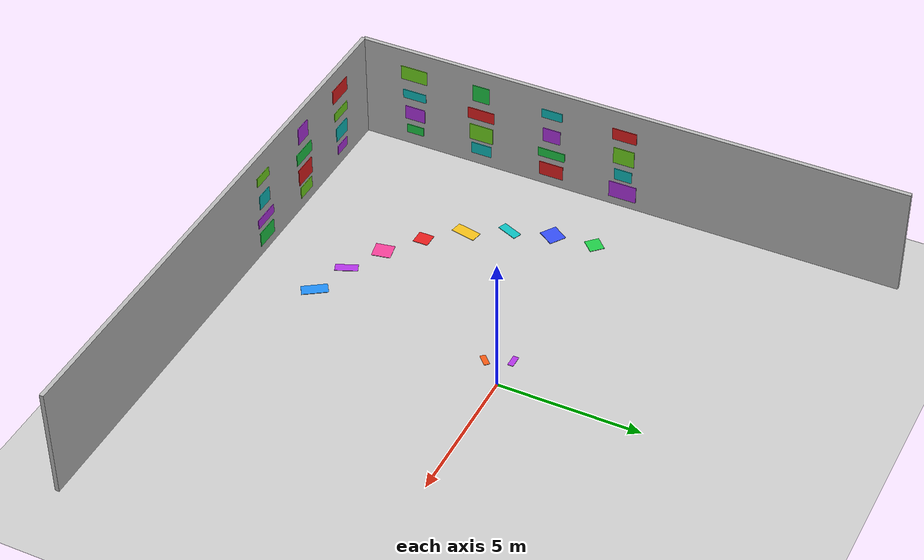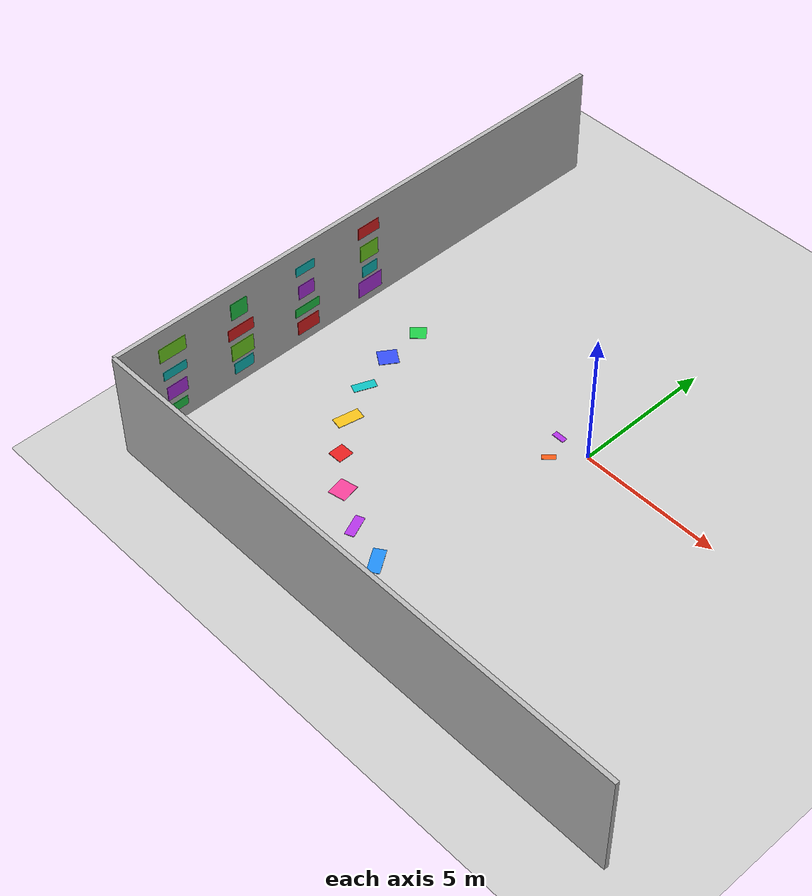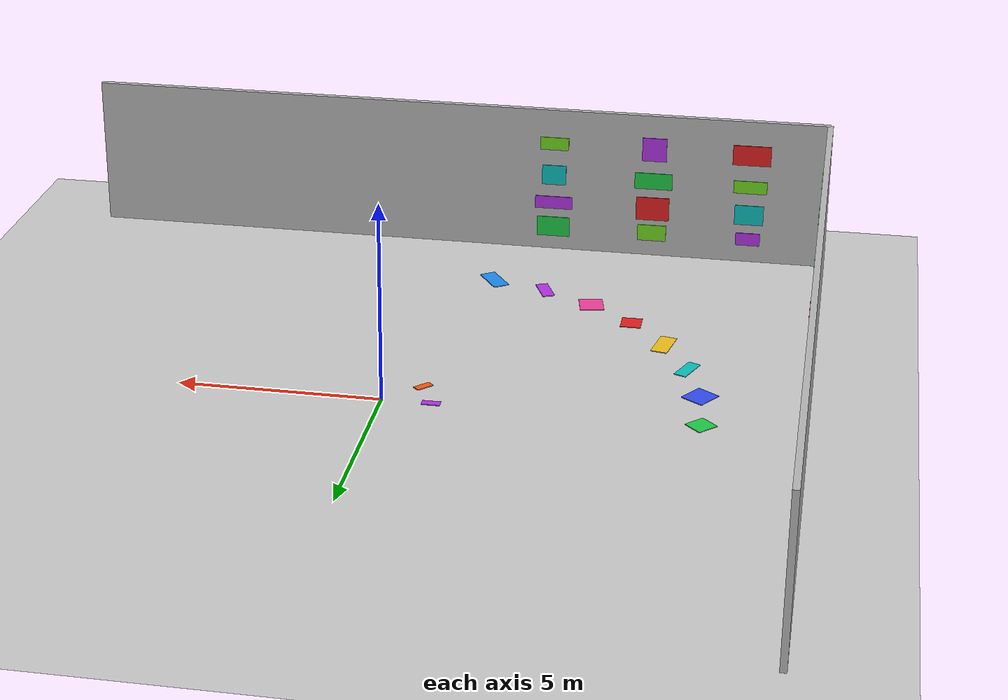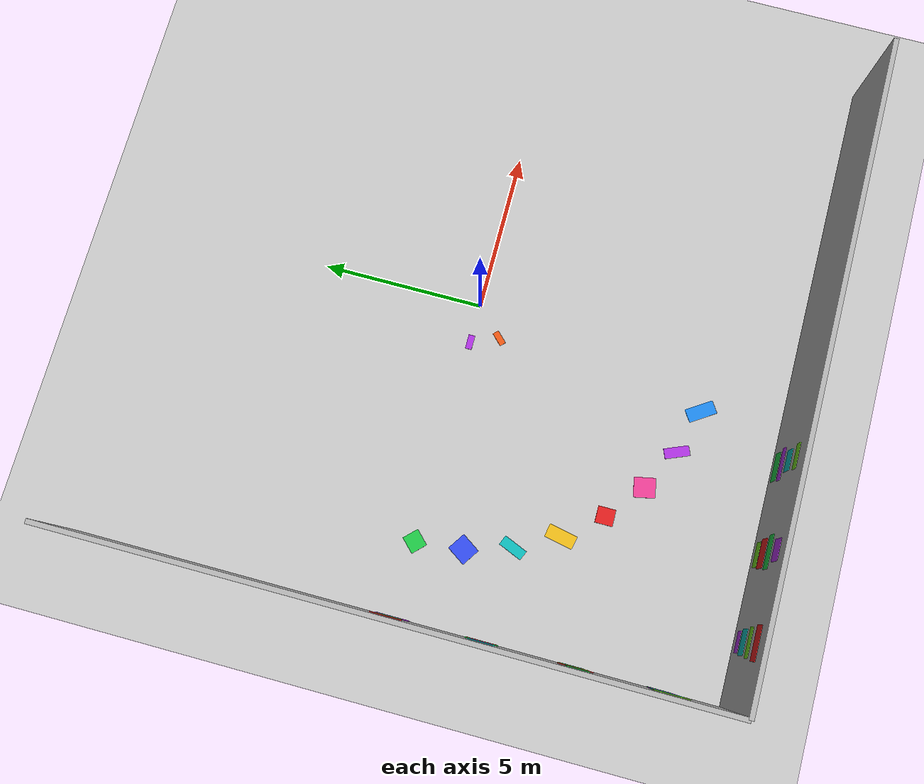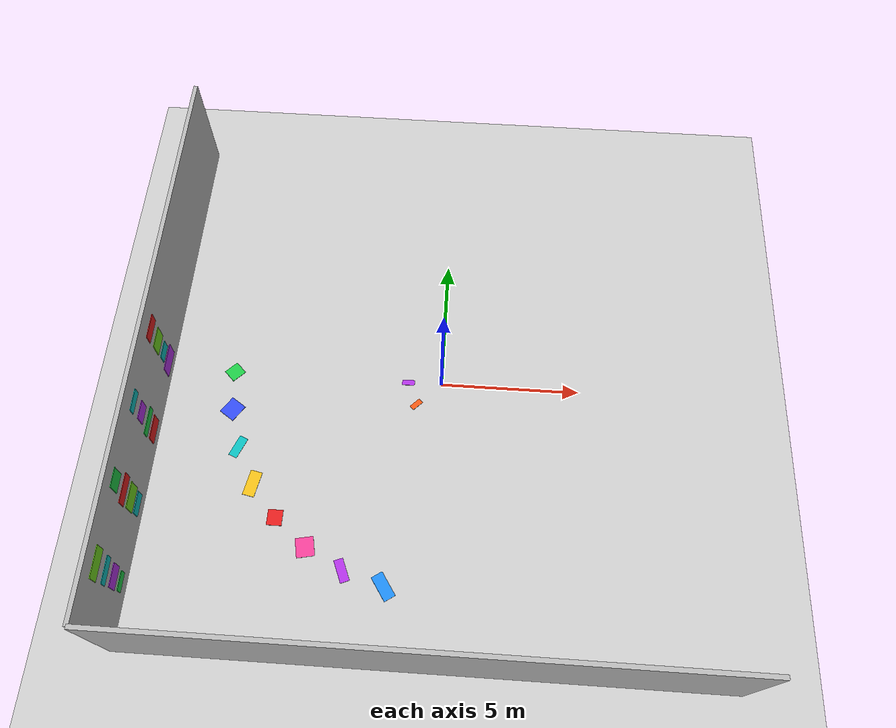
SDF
<sdf version="1.9">
 <world name="vio_marker_arena">
  <model name="ground_plane">
   <static>true</static>
   <link name="link">
    <collision name="collision">
     <geometry><plane><normal>0 0 1</normal><size>1 1</size></plane></geometry>
    </collision>
    <visual name="visual">
     <geometry><plane><normal>0 0 1</normal><size>500 500</size></plane></geometry>
     <material>
      <ambient>0.8 0.8 0.8 1</ambient>
      <diffuse>0.8 0.8 0.8 1</diffuse>
      <specular>0.8 0.8 0.8 1</specular>
     </material>
    </visual>
    <inertial>
     <mass>1</mass>
     <inertia><ixx>1</ixx><ixy>0</ixy><ixz>0</ixz><iyy>1</iyy><iyz>0</iyz><izz>1</izz></inertia>
    </inertial>
   </link>
  </model>
  <model name="vio_wall_south">
   <static>true</static>
   <pose>0.0000 -10.0000 2.0000 0.0000 0.0000 0.0000</pose>
   <link name="link">
    <collision name="collision"><geometry><box><size>20.0000 0.1500 4.0000</size></box></geometry></collision>
    <visual name="visual">
     <geometry><box><size>20.0000 0.1500 4.0000</size></box></geometry>
     <material>
      <ambient>0.720 0.720 0.720 1.000</ambient>
      <diffuse>0.720 0.720 0.720 1.000</diffuse>
      <specular>0.10 0.10 0.10 1</specular>
      <emissive>0 0 0 1</emissive>
     </material>
    </visual>
   </link>
  </model>
  <model name="vio_wall_west">
   <static>true</static>
   <pose>-10.0000 0.0000 2.0000 0.0000 0.0000 0.0000</pose>
   <link name="link">
    <collision name="collision"><geometry><box><size>0.1500 20.0000 4.0000</size></box></geometry></collision>
    <visual name="visual">
     <geometry><box><size>0.1500 20.0000 4.0000</size></box></geometry>
     <material>
      <ambient>0.720 0.720 0.720 1.000</ambient>
      <diffuse>0.720 0.720 0.720 1.000</diffuse>
      <specular>0.10 0.10 0.10 1</specular>
      <emissive>0 0 0 1</emissive>
     </material>
    </visual>
   </link>
  </model>
  <model name="vio_panel_south_0_0">
   <static>true</static>
   <pose>-8.0000 -9.9190 0.6500 0.0000 0.0000 0.0000</pose>
   <link name="link">
    <visual name="visual">
     <geometry><box><size>0.6500 0.0350 0.3500</size></box></geometry>
     <material>
      <ambient>0.700 0.200 0.900 1.000</ambient>
      <diffuse>0.700 0.200 0.900 1.000</diffuse>
      <specular>0.10 0.10 0.10 1</specular>
      <emissive>0 0 0 1</emissive>
     </material>
    </visual>
   </link>
  </model>
  <model name="vio_panel_south_0_1">
   <static>true</static>
   <pose>-5.4000 -9.9190 0.6500 0.0000 0.0000 0.0000</pose>
   <link name="link">
    <visual name="visual">
     <geometry><box><size>0.7700 0.0350 0.4500</size></box></geometry>
     <material>
      <ambient>0.450 0.850 0.120 1.000</ambient>
      <diffuse>0.450 0.850 0.120 1.000</diffuse>
      <specular>0.10 0.10 0.10 1</specular>
      <emissive>0 0 0 1</emissive>
     </material>
    </visual>
   </link>
  </model>
  <model name="vio_panel_south_0_2">
   <static>true</static>
   <pose>-2.7000 -9.9190 0.6500 0.0000 0.0000 0.0000</pose>
   <link name="link">
    <visual name="visual">
     <geometry><box><size>0.8900 0.0350 0.5500</size></box></geometry>
     <material>
      <ambient>0.120 0.800 0.280 1.000</ambient>
      <diffuse>0.120 0.800 0.280 1.000</diffuse>
      <specular>0.10 0.10 0.10 1</specular>
      <emissive>0 0 0 1</emissive>
     </material>
    </visual>
   </link>
  </model>
  <model name="vio_panel_south_1_0">
   <static>true</static>
   <pose>-8.0000 -9.9190 1.3500 0.0000 0.0000 0.0000</pose>
   <link name="link">
    <visual name="visual">
     <geometry><box><size>0.7700 0.0350 0.5500</size></box></geometry>
     <material>
      <ambient>0.050 0.750 0.750 1.000</ambient>
      <diffuse>0.050 0.750 0.750 1.000</diffuse>
      <specular>0.10 0.10 0.10 1</specular>
      <emissive>0 0 0 1</emissive>
     </material>
    </visual>
   </link>
  </model>
  <model name="vio_panel_south_1_1">
   <static>true</static>
   <pose>-5.4000 -9.9190 1.3500 0.0000 0.0000 0.0000</pose>
   <link name="link">
    <visual name="visual">
     <geometry><box><size>0.8900 0.0350 0.6500</size></box></geometry>
     <material>
      <ambient>0.900 0.120 0.120 1.000</ambient>
      <diffuse>0.900 0.120 0.120 1.000</diffuse>
      <specular>0.10 0.10 0.10 1</specular>
      <emissive>0 0 0 1</emissive>
     </material>
    </visual>
   </link>
  </model>
  <model name="vio_panel_south_1_2">
   <static>true</static>
   <pose>-2.7000 -9.9190 1.3500 0.0000 0.0000 0.0000</pose>
   <link name="link">
    <visual name="visual">
     <geometry><box><size>1.0100 0.0350 0.3500</size></box></geometry>
     <material>
      <ambient>0.700 0.200 0.900 1.000</ambient>
      <diffuse>0.700 0.200 0.900 1.000</diffuse>
      <specular>0.10 0.10 0.10 1</specular>
      <emissive>0 0 0 1</emissive>
     </material>
    </visual>
   </link>
  </model>
  <model name="vio_panel_south_2_0">
   <static>true</static>
   <pose>-8.0000 -9.9190 2.1500 0.0000 0.0000 0.0000</pose>
   <link name="link">
    <visual name="visual">
     <geometry><box><size>0.8900 0.0350 0.3500</size></box></geometry>
     <material>
      <ambient>0.450 0.850 0.120 1.000</ambient>
      <diffuse>0.450 0.850 0.120 1.000</diffuse>
      <specular>0.10 0.10 0.10 1</specular>
      <emissive>0 0 0 1</emissive>
     </material>
    </visual>
   </link>
  </model>
  <model name="vio_panel_south_2_1">
   <static>true</static>
   <pose>-5.4000 -9.9190 2.1500 0.0000 0.0000 0.0000</pose>
   <link name="link">
    <visual name="visual">
     <geometry><box><size>1.0100 0.0350 0.4500</size></box></geometry>
     <material>
      <ambient>0.120 0.800 0.280 1.000</ambient>
      <diffuse>0.120 0.800 0.280 1.000</diffuse>
      <specular>0.10 0.10 0.10 1</specular>
      <emissive>0 0 0 1</emissive>
     </material>
    </visual>
   </link>
  </model>
  <model name="vio_panel_south_2_2">
   <static>true</static>
   <pose>-2.7000 -9.9190 2.1500 0.0000 0.0000 0.0000</pose>
   <link name="link">
    <visual name="visual">
     <geometry><box><size>0.6500 0.0350 0.5500</size></box></geometry>
     <material>
      <ambient>0.050 0.750 0.750 1.000</ambient>
      <diffuse>0.050 0.750 0.750 1.000</diffuse>
      <specular>0.10 0.10 0.10 1</specular>
      <emissive>0 0 0 1</emissive>
     </material>
    </visual>
   </link>
  </model>
  <model name="vio_panel_south_3_0">
   <static>true</static>
   <pose>-8.0000 -9.9190 3.0500 0.0000 0.0000 0.0000</pose>
   <link name="link">
    <visual name="visual">
     <geometry><box><size>1.0100 0.0350 0.5500</size></box></geometry>
     <material>
      <ambient>0.900 0.120 0.120 1.000</ambient>
      <diffuse>0.900 0.120 0.120 1.000</diffuse>
      <specular>0.10 0.10 0.10 1</specular>
      <emissive>0 0 0 1</emissive>
     </material>
    </visual>
   </link>
  </model>
  <model name="vio_panel_south_3_1">
   <static>true</static>
   <pose>-5.4000 -9.9190 3.0500 0.0000 0.0000 0.0000</pose>
   <link name="link">
    <visual name="visual">
     <geometry><box><size>0.6500 0.0350 0.6500</size></box></geometry>
     <material>
      <ambient>0.700 0.200 0.900 1.000</ambient>
      <diffuse>0.700 0.200 0.900 1.000</diffuse>
      <specular>0.10 0.10 0.10 1</specular>
      <emissive>0 0 0 1</emissive>
     </material>
    </visual>
   </link>
  </model>
  <model name="vio_panel_south_3_2">
   <static>true</static>
   <pose>-2.7000 -9.9190 3.0500 0.0000 0.0000 0.0000</pose>
   <link name="link">
    <visual name="visual">
     <geometry><box><size>0.7700 0.0350 0.3500</size></box></geometry>
     <material>
      <ambient>0.450 0.850 0.120 1.000</ambient>
      <diffuse>0.450 0.850 0.120 1.000</diffuse>
      <specular>0.10 0.10 0.10 1</specular>
      <emissive>0 0 0 1</emissive>
     </material>
    </visual>
   </link>
  </model>
  <model name="vio_panel_west_0_0">
   <static>true</static>
   <pose>-9.9190 -8.0000 0.6500 0.0000 0.0000 0.0000</pose>
   <link name="link">
    <visual name="visual">
     <geometry><box><size>0.0350 0.6500 0.3500</size></box></geometry>
     <material>
      <ambient>0.120 0.800 0.280 1.000</ambient>
      <diffuse>0.120 0.800 0.280 1.000</diffuse>
      <specular>0.10 0.10 0.10 1</specular>
      <emissive>0 0 0 1</emissive>
     </material>
    </visual>
   </link>
  </model>
  <model name="vio_panel_west_0_1">
   <static>true</static>
   <pose>-9.9190 -5.4000 0.6500 0.0000 0.0000 0.0000</pose>
   <link name="link">
    <visual name="visual">
     <geometry><box><size>0.0350 0.7700 0.4500</size></box></geometry>
     <material>
      <ambient>0.050 0.750 0.750 1.000</ambient>
      <diffuse>0.050 0.750 0.750 1.000</diffuse>
      <specular>0.10 0.10 0.10 1</specular>
      <emissive>0 0 0 1</emissive>
     </material>
    </visual>
   </link>
  </model>
  <model name="vio_panel_west_0_2">
   <static>true</static>
   <pose>-9.9190 -2.7000 0.6500 0.0000 0.0000 0.0000</pose>
   <link name="link">
    <visual name="visual">
     <geometry><box><size>0.0350 0.8900 0.5500</size></box></geometry>
     <material>
      <ambient>0.900 0.120 0.120 1.000</ambient>
      <diffuse>0.900 0.120 0.120 1.000</diffuse>
      <specular>0.10 0.10 0.10 1</specular>
      <emissive>0 0 0 1</emissive>
     </material>
    </visual>
   </link>
  </model>
  <model name="vio_panel_west_0_3">
   <static>true</static>
   <pose>-9.9190 0.0000 0.6500 0.0000 0.0000 0.0000</pose>
   <link name="link">
    <visual name="visual">
     <geometry><box><size>0.0350 1.0100 0.6500</size></box></geometry>
     <material>
      <ambient>0.700 0.200 0.900 1.000</ambient>
      <diffuse>0.700 0.200 0.900 1.000</diffuse>
      <specular>0.10 0.10 0.10 1</specular>
      <emissive>0 0 0 1</emissive>
     </material>
    </visual>
   </link>
  </model>
  <model name="vio_panel_west_1_0">
   <static>true</static>
   <pose>-9.9190 -8.0000 1.3500 0.0000 0.0000 0.0000</pose>
   <link name="link">
    <visual name="visual">
     <geometry><box><size>0.0350 0.7700 0.5500</size></box></geometry>
     <material>
      <ambient>0.700 0.200 0.900 1.000</ambient>
      <diffuse>0.700 0.200 0.900 1.000</diffuse>
      <specular>0.10 0.10 0.10 1</specular>
      <emissive>0 0 0 1</emissive>
     </material>
    </visual>
   </link>
  </model>
  <model name="vio_panel_west_1_1">
   <static>true</static>
   <pose>-9.9190 -5.4000 1.3500 0.0000 0.0000 0.0000</pose>
   <link name="link">
    <visual name="visual">
     <geometry><box><size>0.0350 0.8900 0.6500</size></box></geometry>
     <material>
      <ambient>0.450 0.850 0.120 1.000</ambient>
      <diffuse>0.450 0.850 0.120 1.000</diffuse>
      <specular>0.10 0.10 0.10 1</specular>
      <emissive>0 0 0 1</emissive>
     </material>
    </visual>
   </link>
  </model>
  <model name="vio_panel_west_1_2">
   <static>true</static>
   <pose>-9.9190 -2.7000 1.3500 0.0000 0.0000 0.0000</pose>
   <link name="link">
    <visual name="visual">
     <geometry><box><size>0.0350 1.0100 0.3500</size></box></geometry>
     <material>
      <ambient>0.120 0.800 0.280 1.000</ambient>
      <diffuse>0.120 0.800 0.280 1.000</diffuse>
      <specular>0.10 0.10 0.10 1</specular>
      <emissive>0 0 0 1</emissive>
     </material>
    </visual>
   </link>
  </model>
  <model name="vio_panel_west_1_3">
   <static>true</static>
   <pose>-9.9190 0.0000 1.3500 0.0000 0.0000 0.0000</pose>
   <link name="link">
    <visual name="visual">
     <geometry><box><size>0.0350 0.6500 0.4500</size></box></geometry>
     <material>
      <ambient>0.050 0.750 0.750 1.000</ambient>
      <diffuse>0.050 0.750 0.750 1.000</diffuse>
      <specular>0.10 0.10 0.10 1</specular>
      <emissive>0 0 0 1</emissive>
     </material>
    </visual>
   </link>
  </model>
  <model name="vio_panel_west_2_0">
   <static>true</static>
   <pose>-9.9190 -8.0000 2.1500 0.0000 0.0000 0.0000</pose>
   <link name="link">
    <visual name="visual">
     <geometry><box><size>0.0350 0.8900 0.3500</size></box></geometry>
     <material>
      <ambient>0.050 0.750 0.750 1.000</ambient>
      <diffuse>0.050 0.750 0.750 1.000</diffuse>
      <specular>0.10 0.10 0.10 1</specular>
      <emissive>0 0 0 1</emissive>
     </material>
    </visual>
   </link>
  </model>
  <model name="vio_panel_west_2_1">
   <static>true</static>
   <pose>-9.9190 -5.4000 2.1500 0.0000 0.0000 0.0000</pose>
   <link name="link">
    <visual name="visual">
     <geometry><box><size>0.0350 1.0100 0.4500</size></box></geometry>
     <material>
      <ambient>0.900 0.120 0.120 1.000</ambient>
      <diffuse>0.900 0.120 0.120 1.000</diffuse>
      <specular>0.10 0.10 0.10 1</specular>
      <emissive>0 0 0 1</emissive>
     </material>
    </visual>
   </link>
  </model>
  <model name="vio_panel_west_2_2">
   <static>true</static>
   <pose>-9.9190 -2.7000 2.1500 0.0000 0.0000 0.0000</pose>
   <link name="link">
    <visual name="visual">
     <geometry><box><size>0.0350 0.6500 0.5500</size></box></geometry>
     <material>
      <ambient>0.700 0.200 0.900 1.000</ambient>
      <diffuse>0.700 0.200 0.900 1.000</diffuse>
      <specular>0.10 0.10 0.10 1</specular>
      <emissive>0 0 0 1</emissive>
     </material>
    </visual>
   </link>
  </model>
  <model name="vio_panel_west_2_3">
   <static>true</static>
   <pose>-9.9190 0.0000 2.1500 0.0000 0.0000 0.0000</pose>
   <link name="link">
    <visual name="visual">
     <geometry><box><size>0.0350 0.7700 0.6500</size></box></geometry>
     <material>
      <ambient>0.450 0.850 0.120 1.000</ambient>
      <diffuse>0.450 0.850 0.120 1.000</diffuse>
      <specular>0.10 0.10 0.10 1</specular>
      <emissive>0 0 0 1</emissive>
     </material>
    </visual>
   </link>
  </model>
  <model name="vio_panel_west_3_0">
   <static>true</static>
   <pose>-9.9190 -8.0000 3.0500 0.0000 0.0000 0.0000</pose>
   <link name="link">
    <visual name="visual">
     <geometry><box><size>0.0350 1.0100 0.5500</size></box></geometry>
     <material>
      <ambient>0.450 0.850 0.120 1.000</ambient>
      <diffuse>0.450 0.850 0.120 1.000</diffuse>
      <specular>0.10 0.10 0.10 1</specular>
      <emissive>0 0 0 1</emissive>
     </material>
    </visual>
   </link>
  </model>
  <model name="vio_panel_west_3_1">
   <static>true</static>
   <pose>-9.9190 -5.4000 3.0500 0.0000 0.0000 0.0000</pose>
   <link name="link">
    <visual name="visual">
     <geometry><box><size>0.0350 0.6500 0.6500</size></box></geometry>
     <material>
      <ambient>0.120 0.800 0.280 1.000</ambient>
      <diffuse>0.120 0.800 0.280 1.000</diffuse>
      <specular>0.10 0.10 0.10 1</specular>
      <emissive>0 0 0 1</emissive>
     </material>
    </visual>
   </link>
  </model>
  <model name="vio_panel_west_3_2">
   <static>true</static>
   <pose>-9.9190 -2.7000 3.0500 0.0000 0.0000 0.0000</pose>
   <link name="link">
    <visual name="visual">
     <geometry><box><size>0.0350 0.7700 0.3500</size></box></geometry>
     <material>
      <ambient>0.050 0.750 0.750 1.000</ambient>
      <diffuse>0.050 0.750 0.750 1.000</diffuse>
      <specular>0.10 0.10 0.10 1</specular>
      <emissive>0 0 0 1</emissive>
     </material>
    </visual>
   </link>
  </model>
  <model name="vio_panel_west_3_3">
   <static>true</static>
   <pose>-9.9190 0.0000 3.0500 0.0000 0.0000 0.0000</pose>
   <link name="link">
    <visual name="visual">
     <geometry><box><size>0.0350 0.8900 0.4500</size></box></geometry>
     <material>
      <ambient>0.900 0.120 0.120 1.000</ambient>
      <diffuse>0.900 0.120 0.120 1.000</diffuse>
      <specular>0.10 0.10 0.10 1</specular>
      <emissive>0 0 0 1</emissive>
     </material>
    </visual>
   </link>
  </model>
  <model name="vio_floor_marker_16">
   <static>true</static>
   <pose>-7.6000 0.0000 0.0120 0.0000 0.0000 3.9270</pose>
   <link name="link">
    <visual name="visual">
     <geometry><box><size>0.5500 0.5200 0.0180</size></box></geometry>
     <material>
      <ambient>0.120 0.800 0.280 1.000</ambient>
      <diffuse>0.120 0.800 0.280 1.000</diffuse>
      <specular>0.10 0.10 0.10 1</specular>
      <emissive>0 0 0 1</emissive>
     </material>
    </visual>
   </link>
  </model>
  <model name="vio_floor_marker_17">
   <static>true</static>
   <pose>-7.4540 -1.4827 0.0120 0.0000 0.0000 4.1233</pose>
   <link name="link">
    <visual name="visual">
     <geometry><box><size>0.6700 0.6200 0.0180</size></box></geometry>
     <material>
      <ambient>0.200 0.300 0.950 1.000</ambient>
      <diffuse>0.200 0.300 0.950 1.000</diffuse>
      <specular>0.10 0.10 0.10 1</specular>
      <emissive>0 0 0 1</emissive>
     </material>
    </visual>
   </link>
  </model>
  <model name="vio_floor_marker_18">
   <static>true</static>
   <pose>-7.0215 -2.9084 0.0120 0.0000 0.0000 4.3197</pose>
   <link name="link">
    <visual name="visual">
     <geometry><box><size>0.7900 0.3200 0.0180</size></box></geometry>
     <material>
      <ambient>0.050 0.750 0.750 1.000</ambient>
      <diffuse>0.050 0.750 0.750 1.000</diffuse>
      <specular>0.10 0.10 0.10 1</specular>
      <emissive>0 0 0 1</emissive>
     </material>
    </visual>
   </link>
  </model>
  <model name="vio_floor_marker_19">
   <static>true</static>
   <pose>-6.3192 -4.2223 0.0120 0.0000 0.0000 4.5160</pose>
   <link name="link">
    <visual name="visual">
     <geometry><box><size>0.9100 0.4200 0.0180</size></box></geometry>
     <material>
      <ambient>0.950 0.750 0.100 1.000</ambient>
      <diffuse>0.950 0.750 0.100 1.000</diffuse>
      <specular>0.10 0.10 0.10 1</specular>
      <emissive>0 0 0 1</emissive>
     </material>
    </visual>
   </link>
  </model>
  <model name="vio_floor_marker_20">
   <static>true</static>
   <pose>-5.3740 -5.3740 0.0120 0.0000 0.0000 4.7124</pose>
   <link name="link">
    <visual name="visual">
     <geometry><box><size>0.5500 0.5200 0.0180</size></box></geometry>
     <material>
      <ambient>0.900 0.120 0.120 1.000</ambient>
      <diffuse>0.900 0.120 0.120 1.000</diffuse>
      <specular>0.10 0.10 0.10 1</specular>
      <emissive>0 0 0 1</emissive>
     </material>
    </visual>
   </link>
  </model>
  <model name="vio_floor_marker_21">
   <static>true</static>
   <pose>-4.2223 -6.3192 0.0120 0.0000 0.0000 4.9087</pose>
   <link name="link">
    <visual name="visual">
     <geometry><box><size>0.6700 0.6200 0.0180</size></box></geometry>
     <material>
      <ambient>0.950 0.250 0.600 1.000</ambient>
      <diffuse>0.950 0.250 0.600 1.000</diffuse>
      <specular>0.10 0.10 0.10 1</specular>
      <emissive>0 0 0 1</emissive>
     </material>
    </visual>
   </link>
  </model>
  <model name="vio_floor_marker_22">
   <static>true</static>
   <pose>-2.9084 -7.0215 0.0120 0.0000 0.0000 5.1051</pose>
   <link name="link">
    <visual name="visual">
     <geometry><box><size>0.7900 0.3200 0.0180</size></box></geometry>
     <material>
      <ambient>0.700 0.200 0.900 1.000</ambient>
      <diffuse>0.700 0.200 0.900 1.000</diffuse>
      <specular>0.10 0.10 0.10 1</specular>
      <emissive>0 0 0 1</emissive>
     </material>
    </visual>
   </link>
  </model>
  <model name="vio_floor_marker_23">
   <static>true</static>
   <pose>-1.4827 -7.4540 0.0120 0.0000 0.0000 5.3014</pose>
   <link name="link">
    <visual name="visual">
     <geometry><box><size>0.9100 0.4200 0.0180</size></box></geometry>
     <material>
      <ambient>0.120 0.550 0.950 1.000</ambient>
      <diffuse>0.120 0.550 0.950 1.000</diffuse>
      <specular>0.10 0.10 0.10 1</specular>
      <emissive>0 0 0 1</emissive>
     </material>
    </visual>
   </link>
  </model>
  <model name="vio_center_marker_4">
   <static>true</static>
   <pose>-1.2000 0.0000 0.0130 0.0000 0.0000 3.1416</pose>
   <link name="link">
    <visual name="visual">
     <geometry><box><size>0.4500 0.2000 0.0200</size></box></geometry>
     <material>
      <ambient>0.700 0.200 0.900 1.000</ambient>
      <diffuse>0.700 0.200 0.900 1.000</diffuse>
      <specular>0.10 0.10 0.10 1</specular>
      <emissive>0 0 0 1</emissive>
     </material>
    </visual>
   </link>
  </model>
  <model name="vio_center_marker_5">
   <static>true</static>
   <pose>-0.8485 -0.8485 0.0130 0.0000 0.0000 3.9270</pose>
   <link name="link">
    <visual name="visual">
     <geometry><box><size>0.4500 0.2000 0.0200</size></box></geometry>
     <material>
      <ambient>0.950 0.350 0.080 1.000</ambient>
      <diffuse>0.950 0.350 0.080 1.000</diffuse>
      <specular>0.10 0.10 0.10 1</specular>
      <emissive>0 0 0 1</emissive>
     </material>
    </visual>
   </link>
  </model>
 </world>
</sdf>
